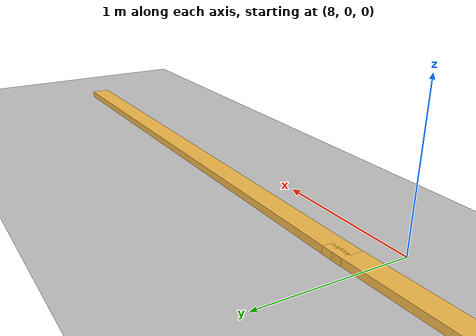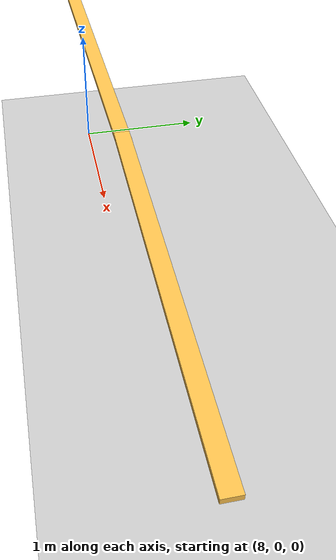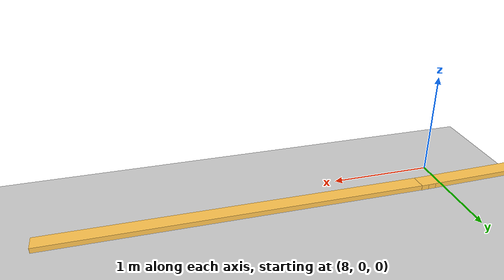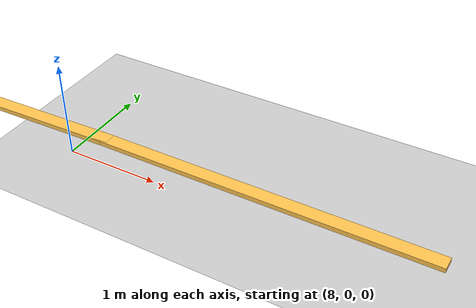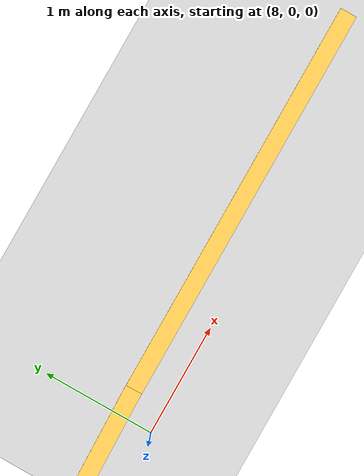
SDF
<sdf version="1.7">
 <world name="default">
  <light name="sun" type="directional">
   <pose>0 0 10 0 -0 0</pose>
   <diffuse>0.8 0.8 0.8 1</diffuse>
   <specular>0.2 0.2 0.2 1</specular>
   <attenuation>
    <range>1000</range>
    <constant>0.9</constant>
    <linear>0.01</linear>
    <quadratic>0.001</quadratic>
   </attenuation>
   <direction>-0.5 0.1 -0.9</direction>
   <spot><inner_angle>0</inner_angle><outer_angle>0</outer_angle><falloff>0</falloff></spot>
  </light>
  <model name="ground_plane">
   <static>1</static>
   <link name="link">
    <collision name="collision">
     <geometry><plane><normal>0 0 1</normal><size>100 100</size></plane></geometry>
     <surface>
      <contact><collide_bitmask>65535</collide_bitmask></contact>
      <friction><ode><mu>100</mu><mu2>50</mu2></ode></friction>
     </surface>
    </collision>
    <visual name="visual">
     <cast_shadows>0</cast_shadows>
     <geometry><plane><normal>0 0 1</normal><size>100 100</size></plane></geometry>
     <material>
      <script><uri>file://media/materials/scripts/gazebo.material</uri><name>Gazebo/Grey</name></script>
     </material>
    </visual>
   </link>
  </model>
  <gravity>0 0 -9.8</gravity>
  <magnetic_field>6e-06 2.3e-05 -4.2e-05</magnetic_field>
  <atmosphere type="adiabatic"/>
  <physics type="ode">
   <max_step_size>0.001</max_step_size>
   <real_time_factor>1</real_time_factor>
   <real_time_update_rate>1000</real_time_update_rate>
  </physics>
  <scene><ambient>0.4 0.4 0.4 1</ambient><background>0.7 0.7 0.7 1</background><shadows>1</shadows></scene>
  <spherical_coordinates>
   <surface_model>EARTH_WGS84</surface_model>
   <latitude_deg>0</latitude_deg>
   <longitude_deg>0</longitude_deg>
   <elevation>0</elevation>
   <heading_deg>0</heading_deg>
  </spherical_coordinates>
  <model name="Untitled">
   <pose>4.79705 0.1675 0 0 -0 0</pose>
   <link name="Wall_4">
    <collision name="Wall_4_Collision">
     <geometry><box><size>10.5034 0.15 0.05</size></box></geometry>
     <pose>0 0 0.025 0 -0 0</pose>
    </collision>
    <visual name="Wall_4_Visual">
     <pose>0 0 0.025 0 -0 0</pose>
     <geometry><box><size>10.5034 0.15 0.05</size></box></geometry>
     <material>
      <script><uri>file://media/materials/scripts/gazebo.material</uri><name>Gazebo/Grey</name></script>
      <ambient>1 0.764706 0.305882 1</ambient>
     </material>
     <meta><layer>0</layer></meta>
    </visual>
    <pose>-1.79905 0 0 0 -0 0.025598</pose>
   </link>
   <link name="Wall_6">
    <collision name="Wall_6_Collision">
     <geometry><box><size>3.75 0.15 0.05</size></box></geometry>
     <pose>0 0 0.025 0 -0 0</pose>
    </collision>
    <visual name="Wall_6_Visual">
     <pose>0 0 0.025 0 -0 0</pose>
     <geometry><box><size>3.75 0.15 0.05</size></box></geometry>
     <material>
      <script><uri>file://media/materials/scripts/gazebo.material</uri><name>Gazebo/Grey</name></script>
      <ambient>1 0.764706 0.305882 1</ambient>
     </material>
     <meta><layer>0</layer></meta>
    </visual>
    <pose>5.17595 0.1325 0 0 -0 0</pose>
   </link>
   <static>1</static>
  </model>
 </world>
</sdf>
